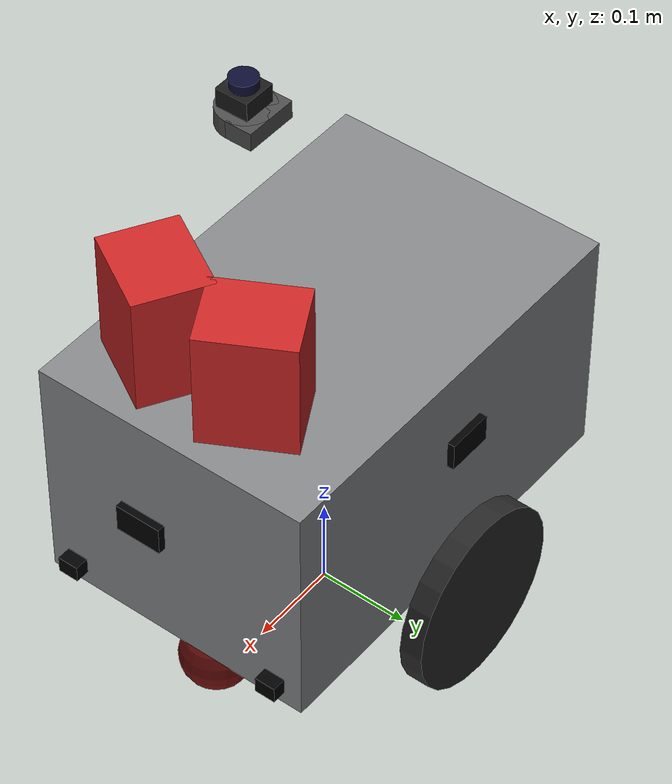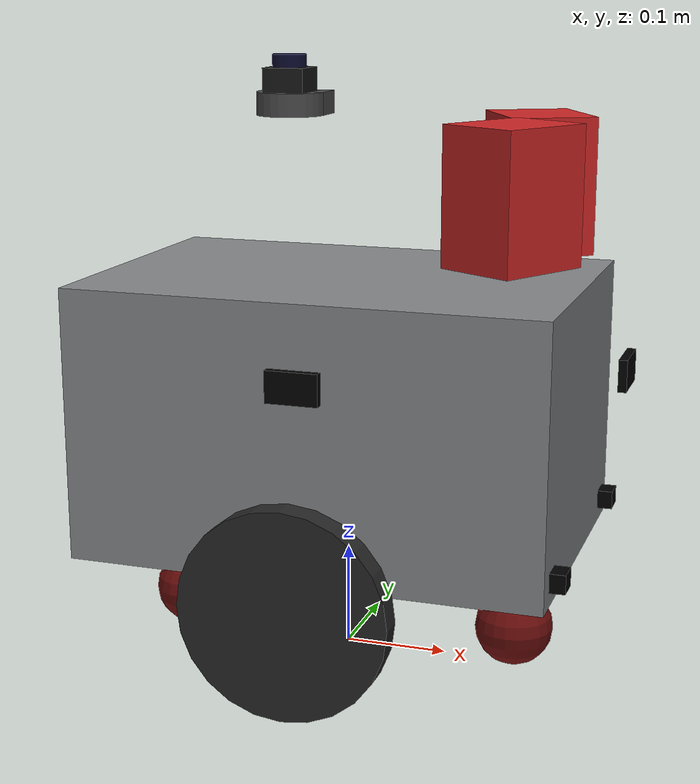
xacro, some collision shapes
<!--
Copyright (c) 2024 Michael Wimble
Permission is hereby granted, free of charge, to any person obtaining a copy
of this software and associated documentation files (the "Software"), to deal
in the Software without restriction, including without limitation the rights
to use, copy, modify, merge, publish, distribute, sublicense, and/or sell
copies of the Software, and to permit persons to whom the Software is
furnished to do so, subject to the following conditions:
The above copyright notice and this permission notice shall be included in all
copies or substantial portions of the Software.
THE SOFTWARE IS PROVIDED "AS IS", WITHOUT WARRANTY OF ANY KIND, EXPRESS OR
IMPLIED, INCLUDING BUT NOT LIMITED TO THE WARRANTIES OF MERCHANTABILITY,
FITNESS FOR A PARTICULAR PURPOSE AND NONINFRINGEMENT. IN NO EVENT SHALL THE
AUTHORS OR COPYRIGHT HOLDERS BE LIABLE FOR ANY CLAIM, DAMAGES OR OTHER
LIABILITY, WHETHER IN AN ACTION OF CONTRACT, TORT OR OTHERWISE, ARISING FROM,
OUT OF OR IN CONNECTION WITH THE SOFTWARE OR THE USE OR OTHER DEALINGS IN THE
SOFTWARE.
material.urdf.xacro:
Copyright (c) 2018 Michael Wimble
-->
<?xml version="1.0"?>
<robot xmlns:xacro="http://ros.org/wiki/xacro" name="base">
    <xacro:include filename="$(find s_description)/urdf/properties.urdf.xacro" />
    <xacro:include filename="$(find s_description)/urdf/caster.urdf.xacro" />
    <xacro:include filename="$(find s_description)/urdf/depthai_macro.urdf.xacro" />
    <xacro:include filename="$(find s_description)/urdf/inertials.xacro" />
    <xacro:include filename="$(find s_description)/urdf/ld06.urdf.xacro" />
    <xacro:include filename="$(find s_description)/urdf/material.urdf.xacro" />
    <xacro:include filename="$(find s_description)/urdf/gazebo.urdf.xacro" />
    <xacro:include filename="$(find s_description)/urdf/wheel.urdf.xacro" />
    <xacro:include filename="$(find s_description)/urdf/oakd.urdf.xacro" />

    <link name="base_link">
        <collision>
            <geometry>
                <box size="${body_length} ${body_width} ${body_height}" />
            </geometry>
            <origin rpy="0 0 0"
                xyz="${(-body_length/2)+wheel_offset_from_front} 0 ${(body_height/2)}" />
        </collision>
        <visual>
            <geometry>
                <box size="${body_length} ${body_width} ${body_height}" />
            </geometry>
            <material name="aluminum_frame" />
            <origin rpy="0 0 0"
                xyz="${(-body_length/2)+wheel_offset_from_front} 0 ${(body_height/2)}" />
        </visual>
        <inertial>
            <origin xyz="0 0 0.05" rpy="0 0 0" />
            <mass value="12" />
            <inertia
                ixx="${(1/12) * mass * ((body_width  * body_width)  + (body_height * body_height))}"
                ixy="0.0" ixz="0.0"
                iyy="${(1/12) * mass * ((body_length * body_length) + (body_height * body_height))}"
                iyz="0.0"
                izz="${(1/12) * mass * ((body_length * body_length) + (body_width  * body_width))}" />
        </inertial>
    </link>
    <gazebo reference="base_link">
        <material>
            Gazebo/Grey
        </material>
    </gazebo>

    <link name="base_footprint" />

    <joint name="base_footprint_joint" type="fixed">
        <origin xyz="0 0 ${base_to_floor_z_offset}" rpy="0 0 0" />
        <parent link="base_footprint" />
        <child link="base_link" />
    </joint>

    <xacro:wheel
        side="left"
        radius="${wheel_radius}"
        width="${wheel_width}"
        pos_x="${wheel_pos_x}"
        pos_y="${wheel_pos_y}"
        pos_z="${wheel_pos_z}"
        mass="${wheel_mass}"
    />

    <xacro:wheel
        side="right"
        radius="${wheel_radius}"
        width="${wheel_width}"
        pos_x="${wheel_pos_x}"
        pos_y="${-wheel_pos_y}"
        pos_z="${wheel_pos_z}"
        mass="${wheel_mass}"
    />
    <xacro:caster_wheel
        side="front"
        mass="0.01"
    />

    <xacro:caster_wheel
        side="rear"
        mass="0.01"
    />

    <link name="scan" />
    <joint name="base_to_scan" type="fixed">
      <parent link="base_link" />
      <child link="scan" />
      <origin xyz="-0.018  -0.090 0.430" rpy="0 0 ${M_PI}" />
    </joint>
    <xacro:ld06 lidar_prefix="top_lidar">
        <origin xyz="0 0 0" rpy="0 0 0" />
    </xacro:ld06>
    <joint name="base_to_lidar_frame_top_lidar" type="fixed">
      <parent link="scan" />
      <child link="lidar_frame_top_lidar" />
      <origin xyz="0 0 0" rpy="0 0 0" />
    </joint>

    <xacro:include filename="$(find s_description)/urdf/time_of_flight.urdf.xacro" />
    <xacro:include filename="$(find s_description)/urdf/sonar.urdf.xacro" />

    <xacro:diff_drive_controller
        wheel_separation="${wheel_pos_y * 2}"
        wheel_radius="${wheel_radius}"
    />

    <xacro:oakd_link mount_point="right" />
    <xacro:oakd_joint mount_point="right">
        <origin xyz="0.170 -0.055 0.350" rpy="0 0 -0.523599" />
    </xacro:oakd_joint>
    <link name="oakd_left_right_camera_optical_frame" />
    <joint name="oakd_left_link_optical_frame" type="fixed">
        <parent link="oakd_left"/>
        <child link="oakd_left_right_camera_optical_frame"/>
        <origin xyz="0 0 0" rpy="0 0 0" />
    </joint>

    <xacro:oakd_link mount_point="left" />
    <xacro:oakd_joint mount_point="left">
        <origin xyz="0.170 0.055 0.350" rpy="0 0 0.5" />
    </xacro:oakd_joint>
    <link name="oakd_right_right_camera_optical_frame" />
    <joint name="oakd_right_link_optical_frame" type="fixed">
        <parent link="oakd_right"/>
        <child link="oakd_right_right_camera_optical_frame"/>
        <origin xyz="0 0 0" rpy="0 0 0" />
    </joint>
</robot>

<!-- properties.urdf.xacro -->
<robot xmlns:xacro="http://ros.org/wiki/xacro">
  <xacro:property name="M_PI" value="3.14159" />

  <xacro:property name="body_height" value="0.262" />
  <xacro:property name="body_length" value="0.4572" />
  <xacro:property name="body_width" value="0.3048" />
  <xacro:property name="mass" value="22" />

  <xacro:property name="caster_radius" value="0.0381" />
  <xacro:property name="caster_width" value="0.023" />
  <xacro:property name="fwheel_offset" value="0.170" />
  <xacro:property name="gear_box_center_height" value="0.015" />
  <xacro:property name="t265_height" value="0.016" />
  <xacro:property name="t265_length" value="0.100" />
  <xacro:property name="t265_width" value="0.008" />
  <xacro:property name="t265_x_offset" value="0.2126" />
  <xacro:property name="wheel_radius" value="0.10" />
  <xacro:property name="wheel_center_offset" value="0.030" />
  <xacro:property name="wheel_mass" value=".1" />
  <xacro:property name="wheel_pos_x" value="0.0" />
  <xacro:property name="wheel_pos_y" value="${(body_width/2)+wheel_center_offset}" />
  <xacro:property name="wheel_pos_z" value="-${gear_box_center_height}" />
  <xacro:property name="wheel_width" value="0.0254" />

  <xacro:property name="base_to_floor_z_offset" value="${wheel_radius+gear_box_center_height}" />
  <xacro:property name="t265_z_offset" value="${base_to_floor_z_offset+0.293}" />

  <xacro:property name="wheel_offset_from_front" value="${body_length/2}" />

  <material name="black">
    <color rgba="0 0 0 1" />
  </material>

  <material name="blackish">
    <color rgba="0.1 0.1 0.1 1" />
  </material>

</robot>

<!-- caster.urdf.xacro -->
<robot xmlns:xacro="http://ros.org/wiki/xacro">
	<xacro:macro name="caster_wheel" params="side mass">
		<xacro:property name="caster_wheel_radius" value="0.0381" />
		<xacro:if value="${side == 'front'}">
			<xacro:property name="caster_wheel_x" value="${fwheel_offset}" />
		</xacro:if>

		<xacro:if value="${side == 'rear'}">
			<xacro:property name="caster_wheel_x" value="${-fwheel_offset}" />
		</xacro:if>

		<link name="${side}_caster_wheel_link">
			<visual>
				<origin xyz="0 0 0" rpy="0 0 0" />
				<geometry>
					<sphere radius="${caster_wheel_radius}" />
				</geometry>
				<material name="red">
					<color rgba="0.416 0.051 0.047 1.0" />
				</material>
			</visual>

			<collision>
				<origin xyz="0 0 0" rpy="0 0 0" />
				<geometry>
					<sphere radius="${caster_wheel_radius}" />
				</geometry>
			</collision>

			<inertial>
				<origin xyz="0 0 0" rpy="0 0 0" />
				<mass value="${mass}" />
				<inertia ixx="${(2/5) * mass * (caster_wheel_radius * caster_wheel_radius)}" ixy="0"
					ixz="0"
					iyy="${(2/5) * mass * (caster_wheel_radius * caster_wheel_radius)}" iyz="0"
					izz="${(2/5) * mass * (caster_wheel_radius * caster_wheel_radius)}" />
			</inertial>
		</link>

		<gazebo reference="${side}_caster_wheel_link">
			<mu1>0.01</mu1>
			<mu2>0.01</mu2>
			<material>Gazebo/Red</material>
		</gazebo>

		<joint name="${side}_caster_wheel_joint" type="fixed">
			<parent link="base_link" />
			<child link="${side}_caster_wheel_link" />
			<origin
				xyz="${caster_wheel_x} 0 -${wheel_radius + gear_box_center_height - caster_wheel_radius}"
				rpy="0 0 0" />
		</joint>
	</xacro:macro>
</robot>

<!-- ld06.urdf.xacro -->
<robot xmlns:xacro="http://ros.org/wiki/xacro" name="ld06">

  <xacro:macro name="ld06" params="lidar_prefix *joint_pose">
    <material name="ld06_${lidar_prefix}_grey">
      <color rgba="0.3 0.3 0.3 1" />
    </material>

    <material name="ld06_${lidar_prefix}_blackish">
      <color rgba="0.1 0.1 0.1 1" />
    </material>

    <material name="ld06_${lidar_prefix}_cylinder">
      <color rgba="0.05 0.05 0.2 1" />
    </material>
    <xacro:property name="ldlidar_z_offset" value="-0.003" />

    <xacro:property name="ld06_base_box_height" value="0.020" />
    <xacro:property name="ld06_base_box_width" value="0.060" />
    <xacro:property name="ld06_box_width" value="0.037" />
    <xacro:property name="ld06_box_height" value="0.022" />
    <xacro:property name="ld06_cylinder_height" value="0.013" />
    <xacro:property name="ld06_cylinder_radius" value="0.015" />

    <link name="ld06_box_${lidar_prefix}">
      <collision>
        <geometry>
          <box size="${ld06_box_width} ${ld06_box_width} ${ld06_box_height}" />
        </geometry>
        <origin rpy="0 0 0" xyz="0 0 0" />
      </collision>
      <visual>
        <geometry>
          <box size="${ld06_box_width} ${ld06_box_width} ${ld06_box_height}" />
        </geometry>
        <origin rpy="0 0 0" xyz="0 0 0" />
        <material name="ld06_${lidar_prefix}_blackish" />
      </visual>
    </link>
    <gazebo reference="ld06_box_${lidar_prefix}">
      <material>
        Gazebo/Black
      </material>
    </gazebo>
    <link name="ld06_cylinder_${lidar_prefix}">
      <collision>
        <geometry>
          <cylinder radius="${ld06_cylinder_radius}" length="${ld06_cylinder_height}" />
        </geometry>
      </collision>
      <visual>
        <geometry>
          <cylinder radius="${ld06_cylinder_radius}" length="${ld06_cylinder_height}" />
        </geometry>
        <origin xyz="0 0 0" rpy="0 0 0" />
        <material name="ld06_${lidar_prefix}_cylinder" />
      </visual>
    </link>
    <gazebo reference="ld06_cylinder_${lidar_prefix}">
      <material>
        Gazebo/BlueGlow
      </material>
    </gazebo>
    <link name="lidar_frame_${lidar_prefix}">
      <collision>
        <geometry>
          <box size="${ld06_base_box_width} ${ld06_base_box_width / 2} ${ld06_base_box_height}" />
        </geometry>
      </collision>
      <visual>
        <geometry>
          <box size="${ld06_base_box_width} ${ld06_base_box_width / 2} ${ld06_base_box_height}" />
        </geometry>
        <origin xyz="0 0 0" rpy="0 0 0" />
        <material name="ld06_${lidar_prefix}_grey" />
      </visual>
    </link>
    <gazebo reference="ld06_frame_${lidar_prefix}">
      <material>
        Gazebo/Grey
      </material>
    </gazebo>
    <link name="ld06_base_cylinder_${lidar_prefix}">
      <collision>
        <geometry>
          <cylinder radius="${ld06_base_box_width / 2}" length="${ld06_base_box_height}" />
        </geometry>
      </collision>
      <visual>
        <geometry>
          <cylinder radius="${ld06_base_box_width / 2}" length="${ld06_base_box_height}" />
        </geometry>
        <material name="ld06_${lidar_prefix}_grey" />
        <origin xyz="0 ${ld06_base_box_width / 4} 0" rpy="0 0 0" />
      </visual>
    </link>
    <gazebo reference="ld06_base_cylinder_${lidar_prefix}">
      <material>
        Gazebo/Grey
      </material>
    </gazebo>
    <joint name="ld06_base_cylinder_base_box_${lidar_prefix}" type="fixed">
      <parent link="lidar_frame_${lidar_prefix}" />
      <child link="ld06_base_cylinder_${lidar_prefix}" />
      <origin xyz="0 0 0" rpy="0 0 0" />
      <axis xyz="0 0 0" />
    </joint>
    <joint name="ld06_box_base_box_${lidar_prefix}" type="fixed">
      <parent link="lidar_frame_${lidar_prefix}" />
      <child link="ld06_box_${lidar_prefix}" />
      <origin xyz="0 0.017 ${ld06_base_box_height}" rpy="0 0 0" />
      <axis xyz="0 0 0" />
    </joint>
    <joint name="ld06_cylinder_box_${lidar_prefix}" type="fixed">
      <parent link="ld06_box_${lidar_prefix}" />
      <child link="ld06_cylinder_${lidar_prefix}" />
      <origin xyz="0 0 ${ld06_box_height - ld06_cylinder_height/2}" rpy="0 0 0" />
      <axis xyz="0 0 0" />
    </joint>

    <gazebo reference="lidar_frame_${lidar_prefix}">
      <sensor name="sensor_ray_${lidar_prefix}" type="ray">
        <always_on>true</always_on>
        <update_rate>10</update_rate>
        <pose>0 0 0 0 0 0</pose>
        <visualize>true</visualize>
        <ray>
          <scan>
            <horizontal>
              <samples>450</samples>
              <resolution>0.8</resolution>
              <min_angle>0</min_angle>
              <max_angle>6.28</max_angle>
            </horizontal>
          </scan>
          <range>
            <min>0.1</min>
            <max>10.0</max>
            <resolution>0.01</resolution>
          </range>
        </ray>

        <plugin name="laserscan_${lidar_prefix}" filename="libgazebo_ros_ray_sensor.so">
          <ros>
            <remapping>~/out:=/scan_${lidar_prefix}</remapping>
          </ros>
          <always_on>true</always_on>
          <frame_name>lidar_frame_${lidar_prefix}</frame_name>
          <output_type>sensor_msgs/LaserScan</output_type>
          <topic_name>/scan_${lidar_prefix}</topic_name>
          <update_rate>10.0</update_rate>
        </plugin>
      </sensor>
      <material>
        Gazebo/Black
      </material>
    </gazebo>
  </xacro:macro>
</robot>

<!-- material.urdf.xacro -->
<robot xmlns:xacro="http://ros.org/wiki/xacro" name="material">

    <gazebo reference="base_link">
        <material>
            <color rgba="0.516 0.527 0.535 1" />
        </material>
    </gazebo>
    <material name="aluminum_frame">
        <color rgba="0.516 0.527 0.535 1" />
    </material>

    <material name="caster_wheel_material">
        <color rgba="0.9 0.1 0.1 1" />
    </material>

    <material name="t265_material">
        <color rgba="0.80 0.40 0.60 1" />
    </material>

    <material name="wheel_material">
        <color rgba="0.15 0.15 0.15 1" />
    </material>

</robot>

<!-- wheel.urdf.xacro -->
<robot xmlns:xacro="http://ros.org/wiki/xacro">
  <xacro:macro name="wheel" params="side radius width pos_x pos_y pos_z mass">
    <link name="${side}_wheel_link">
      <visual>
        <origin xyz="0 0 0" rpy="${pi/2} 0 0" />
        <geometry>
          <cylinder radius="${radius}" length="${width}" />
        </geometry>
        <material name="wheel_material" />
      </visual>
      <collision>
        <origin xyz="0 0 0" rpy="${pi/2} 0 0" />
        <geometry>
          <cylinder radius="${radius}" length="${width}" />
        </geometry>
      </collision>

      <inertial>
        <origin xyz="0 0 0" rpy="0 0 0" />
        <mass value="${mass}" />
        <inertia ixx="${(2/5) * mass * (radius * radius)}" ixy="0" ixz="0"
          iyy="${(2/5) * mass * (radius * radius)}" iyz="0"
          izz="${(2/5) * mass * (radius * radius)}" />
      </inertial>
    </link>
    <gazebo reference="${side}_wheel_link">
      <visual>
        <material>
          <ambient>0.1764 0.4588 0.8509 1.0</ambient>
          <diffuse>0.1764 0.4588 0.8509 1.0</diffuse>
          <specular>0.1764 0.4588 0.8509 1.0</specular>
          <emissive>0.0 0.0 0.0 0.0</emissive>
        </material>
      </visual>
    </gazebo>
    <joint name="${side}_wheel_joint" type="continuous">
      <axis xyz="0 1 0" />
      <parent link="base_link" />
      <child link="${side}_wheel_link" />
      <origin xyz="${pos_x} ${pos_y} ${pos_z}" rpy="0 0 0" />
    </joint>
  </xacro:macro>
</robot>

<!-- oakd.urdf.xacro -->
<!--
  Adapted from code from:
https://github.com/jetdillo/tenacity_rover/tree/0945115d723c82f1d72bb4542ab3540b5a3fad10/tenacity_description/urdf
-->

<!--  xacro macros for oakd mount -->
<robot name="oakd" xmlns:xacro="http://ros.org/wiki/xacro">
  <xacro:macro name="oakd_link" params="mount_point">
    <xacro:property name="oakd_length" value="0.0803" />
    <xacro:property name="oakd_width" value="0.0957" />
    <xacro:property name="oakd_depth" value="0.1267" />
    <xacro:property name="oakd_mass" value="0.15" />

    <link name="oakd_${mount_point}">
      <pose>0.0 0.0 0.0 0.0 0.0 0.0</pose>
      <visual>
        <origin rpy="0 0 0" xyz="0 0 0" />
        <geometry>
          <mesh filename="file://$(find s_description)/meshes/OAK-D.dae" />
        </geometry>
        <color rgba="0.15 0.15 0.15 1" />
      </visual>
      <collision>
        <origin rpy="0 0 0" xyz="0 0 0" />
        <geometry>
          <box size="${oakd_length} ${oakd_width} ${oakd_depth}" />
        </geometry>
      </collision>
      <xacro:solid_cuboid_inertial
        rpy="0 0 0" xyz="0 0 0"
        mass="${oakd_mass}"
        x="${oakd_length}" y="${oakd_width}" z="${oakd_depth}" />
    </link>

    <gazebo reference="oakd_${mount_point}">
      <material>Gazebo/Red</material>

      <sensor name="camera_${mount_point}" type="camera">
        <always_on>true</always_on>
        <visualize>true</visualize>
        <update_rate>10</update_rate>
        <camera name='__default__'>
          <horizontal_fov>1.089</horizontal_fov>
          <image>
            <format>R8G8B8</format>
            <width>640</width>
            <height>480</height>
          </image>
          <clip>
            <near>0.05</near>
            <far>8.0</far>
          </clip>
        </camera>
        <plugin name='camera_controller_${mount_point}' filename='libgazebo_ros_camera.so'>
          <alwaysOn>1</alwaysOn>
          <updateRate>0.0</updateRate>
          <cameraName>camera_${mount_point}</cameraName>
          <hackBaseline>0.07</hackBaseline>
          <distortionK1>0.0</distortionK1>
          <distortionK2>0.0</distortionK2>
          <distortionK3>0.0</distortionK3>
          <distortionT1>0.0</distortionT1>
          <distortionT2>0.0</distortionT2>
        </plugin>
      </sensor>
    </gazebo>

    <gazebo reference="oakd_joint_${mount_point}">
    </gazebo>
  </xacro:macro>

  <xacro:macro name="oakd_joint" params="mount_point *joint_pose">
    <joint name="oakd_joint_${mount_point}" type="fixed">
      <parent link="base_link" />
      <child link="oakd_${mount_point}" />
      <xacro:insert_block name="joint_pose" />
    </joint>

    <gazebo reference="oakd_joint_${mount_point}">
      <preserveFixedJoint>true</preserveFixedJoint>
    </gazebo>
  </xacro:macro>
</robot>

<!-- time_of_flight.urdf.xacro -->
<robot xmlns:xacro="http://ros.org/wiki/xacro" name="time_of_flight">
    <xacro:property name="back_edge" value="${-body_length +wheel_offset_from_front}" />
    <xacro:property name="front_edge" value="${wheel_offset_from_front}" />
    <xacro:property name="case_left_edge" value="${body_width/2}" />
    <xacro:property name="case_right_edge" value="-${body_width/2}" />
    <xacro:property name="tof_depth" value="0.015" />
    <xacro:property name="tof_height" value="0.018" />
    <xacro:property name="tof_width" value="0.023" />
    <xacro:property name="tof_z_offset" value="0.015" />

    <xacro:macro name="tof_unit" params="number *joint_pose">
        <link name="tof_${number}">
            <visual>
                <geometry>
                    <box size="${tof_depth} ${tof_width} ${tof_height}" />
                </geometry>
                <material name="black" />
                <origin xyz="0 0 0" rpy="0 0 0" />
            </visual>
        </link>
        <joint name="baselink_to_tof_${number}" type="fixed">
            <child link="tof_${number}" />
            <parent link="base_link" />
            <xacro:insert_block name="joint_pose" />
        </joint>
        <gazebo reference="tof_${number}">
            <material>
                Gazebo/Grey
            </material>
        </gazebo>
    </xacro:macro>

    <xacro:tof_unit number="0">
        <origin
            xyz="${front_edge+(tof_depth/2)} ${case_left_edge-(tof_width/2) - 0.020} ${(tof_height/2)+tof_z_offset}"
            rpy="0 0 0" />
    </xacro:tof_unit>

    <xacro:tof_unit number="1">
        <origin
            xyz="${front_edge+(tof_depth/2)} ${case_right_edge +(tof_width/2) + 0.020} ${(tof_height/2)+tof_z_offset}"
            rpy="0 0 0" />
    </xacro:tof_unit>

    <xacro:tof_unit number="2">
        <origin
            xyz="${front_edge-(tof_width/2 + 0.020)} ${case_left_edge-0.025} ${(tof_height/2)+tof_z_offset}"
            rpy="0 0 ${M_PI / 2}" />
    </xacro:tof_unit>

    <xacro:tof_unit number="3">
        <origin
            xyz="${front_edge-(tof_width/2 + 0.020)} ${case_right_edge+0.065} ${(tof_height/2)+tof_z_offset}"
            rpy="0 0 -${M_PI / 2}" />
    </xacro:tof_unit>

    <xacro:tof_unit number="4">
        <origin
            xyz="${back_edge+(tof_width/2) + 0.020} ${case_left_edge-0.025} ${(tof_height/2)+tof_z_offset}"
            rpy="0 0 ${M_PI / 2}" />
    </xacro:tof_unit>

    <xacro:tof_unit number="5">
        <origin
            xyz="${back_edge+(tof_width/2) + 0.020} ${case_right_edge+0.065} ${(tof_height/2)+tof_z_offset}"
            rpy="0 0 -${M_PI / 2}" />
    </xacro:tof_unit>

    <xacro:tof_unit number="6">
        <origin
            xyz="${back_edge+0.065} ${case_left_edge-(tof_width/2) - 0.020} ${(tof_height/2)+tof_z_offset}"
            rpy="0 0 -${M_PI}" />
    </xacro:tof_unit>

    <xacro:tof_unit number="7">
        <origin
            xyz="${back_edge+0.065} ${case_right_edge+(tof_width/2) + 0.020} ${(tof_height/2)+tof_z_offset}"
            rpy="0 0 -${M_PI}" />
    </xacro:tof_unit>

</robot>

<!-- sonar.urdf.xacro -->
<robot xmlns:xacro="http://ros.org/wiki/xacro" name="time_of_flight">
    <xacro:property name="back_edge" value="${-body_length +wheel_offset_from_front}" />
    <xacro:property name="front_edge" value="${wheel_offset_from_front}" />
    <xacro:property name="case_left_edge" value="${body_width/2}" />
    <xacro:property name="case_right_edge" value="-${body_width/2}" />
    <xacro:property name="sonar_depth" value="0.008" />
    <xacro:property name="sonar_height" value="0.030" />
    <xacro:property name="sonar_width" value="0.050" />
    <xacro:property name="sonar_z_offset" value="0.173" />

    <xacro:macro name="sonar_unit" params="number *joint_pose">
        <link name="sonar_${number}">
            <visual>
                <geometry>
                    <box size="${sonar_depth} ${sonar_width} ${sonar_height}" />
                </geometry>
                <material name="black" />
                <origin xyz="0 0 0" rpy="0 0 0" />
            </visual>
        </link>
        <joint name="baselink_to_sonar_${number}" type="fixed">
            <child link="sonar_${number}" />
            <parent link="base_link" />
            <xacro:insert_block name="joint_pose" />
        </joint>
        <gazebo reference="sonar_${number}">
            <material>
                Gazebo/Black
            </material>
        </gazebo>
    </xacro:macro>

    <xacro:sonar_unit number="0">
        <origin xyz="${front_edge+0.04} 0 ${(sonar_height/2)+sonar_z_offset}" rpy="0 0 0" />
    </xacro:sonar_unit>

    <xacro:sonar_unit number="1">
        <origin xyz="0 ${case_left_edge+0.015} ${(sonar_height/2)+sonar_z_offset}"
            rpy="0 0 ${M_PI / 2}" />
    </xacro:sonar_unit>

    <xacro:sonar_unit number="2">
        <origin xyz="0 ${case_right_edge-0.005} ${(sonar_height/2)+sonar_z_offset}"
            rpy="0 0 -${M_PI / 2}" />
    </xacro:sonar_unit>

    <xacro:sonar_unit number="3">
        <origin xyz="${back_edge+0.020} 0 ${(sonar_height/2)+sonar_z_offset}"
            rpy="0 0 ${M_PI}" />
    </xacro:sonar_unit>

</robot>
